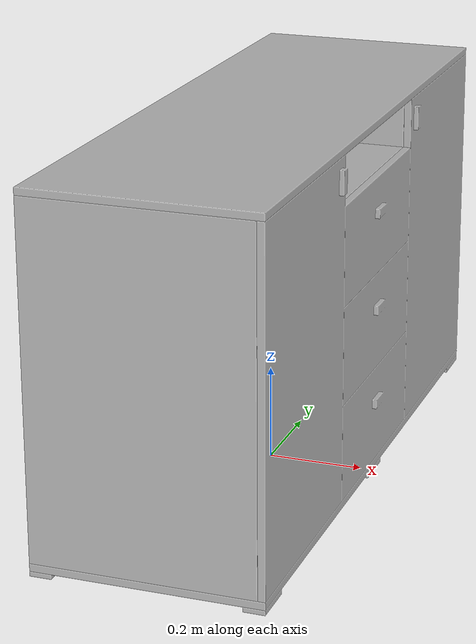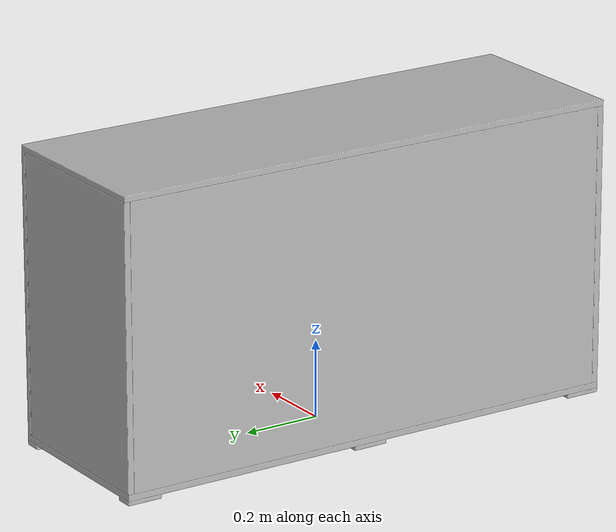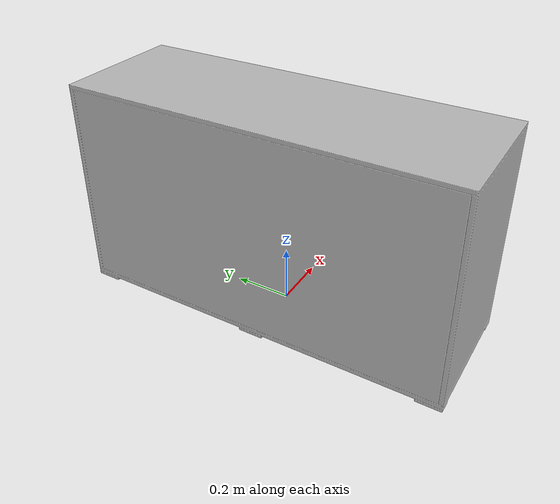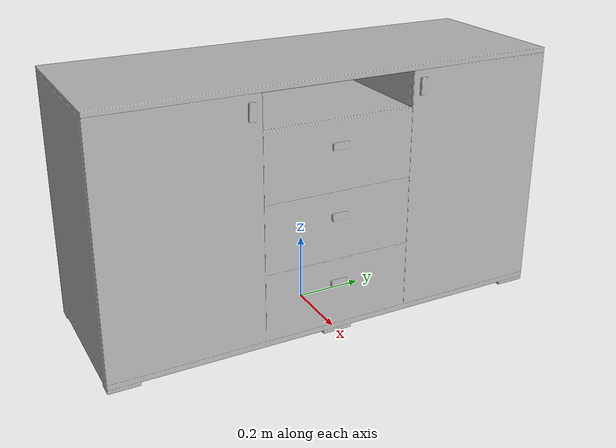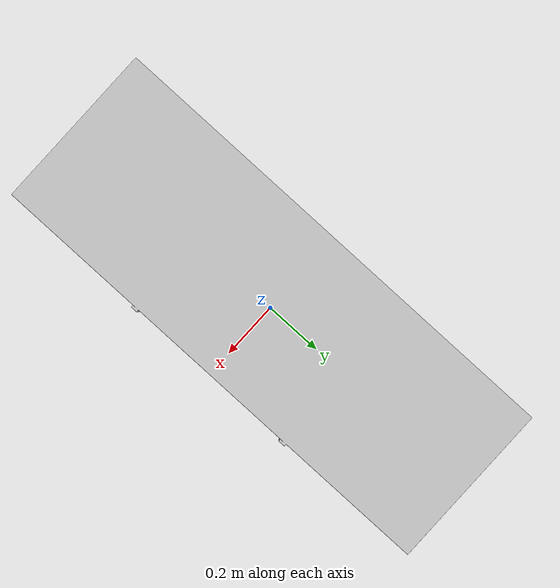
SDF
<?xml version='1.0'?>
<sdf version='1.4'>
  <model name='615'>
    <pose>0 0 0 0 0 0</pose>
    <static>true</static>
    <link name='link'>
      <collision name='collision'>
        <pose>0 0 0 0 0 0</pose>
        <geometry>
          <box>
            <size>0.48 1.36 2</size>
          </box>
        </geometry>
      </collision>
      <visual name='visual'>
        <pose>0 0 0 0 0 0</pose>
        <geometry>
          <mesh><uri>model://615/615.dae</uri></mesh>
        </geometry>
      </visual>
    </link>
  </model>
</sdf>
